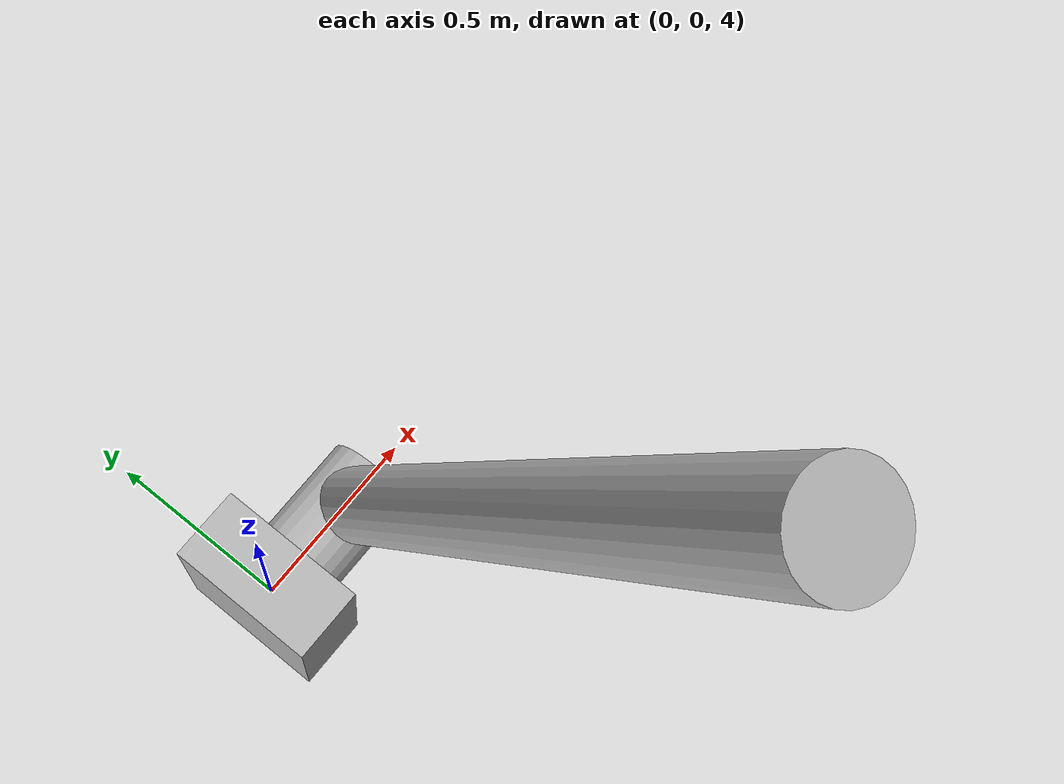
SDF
<sdf version="1.12">
  <world name="double_pendulum_world">

    <!-- Physics settings -->
    <physics name="default_physics" type="ode">
      <max_step_size>0.001</max_step_size>
      <real_time_update_rate>1000</real_time_update_rate>
    </physics>

    <!-- Lighting and Ground -->
    <include>
      <uri>
      https://fuel.gazebosim.org/1.0/OpenRobotics/models/Sun
      </uri>
    </include>
    <include>
      <uri>
        https://fuel.gazebosim.org/1.0/OpenRobotics/models/Ground Plane
      </uri>
    </include>

    <!-- Spawn your pendulum model -->
    <include>
      <uri>model://double_pendulum</uri>
      <pose>0 0 4.0 0 0 0</pose>
    </include>

  </world>
</sdf>

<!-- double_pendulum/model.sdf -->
<sdf version="1.12">
  <model name="double_pendulum">
    <!-- Base -->
    <link name="slider">
      <pose>0.0 0 0 0 0 0</pose>
      <inertial>
        <mass>1.0</mass>
        <pose>0 0 0 0 0 0</pose>
      </inertial>
      <visual name="vis_slider">
        <geometry>
          <box>
            <size>0.2 0.4 0.4</size>
          </box>
        </geometry>
      </visual>
    </link>

    <!-- Link 1 -->
    <link name="link1">
      <pose degrees="true">0.3 0 0 25.0 0 0</pose>
      <inertial>
        <mass>1.0</mass>
        <pose>0 0 1.0 0 0 0</pose>
      </inertial>
      <visual name="vis_link">
        <pose>0 0 1.0 0 0 0</pose>
        <geometry>
          <cylinder>
            <radius>0.1</radius>
            <length>2.0</length>
          </cylinder>
        </geometry>
      </visual>
      <visual name="vis_upper_joint">
        <pose>-0.1 0 0 0 1.5708 0</pose>
        <geometry>
          <cylinder>
            <radius>0.12</radius>
            <length>0.4</length>
          </cylinder>
        </geometry>
      </visual>
      <collision name="col_link">
        <pose>0 0 1.0 0 0 0</pose>
        <geometry>
          <cylinder>
            <radius>0.1</radius>
            <length>2.0</length>
          </cylinder>
        </geometry>
      </collision>
    </link>
    <!-- Link 2 -->

    <!-- Joint 0: world to slider -->
    <joint name="world_to_slider" type="prismatic">
      <parent>world</parent>
      <child>slider</child>
      <pose>0 0 0 0 0 0</pose>
      <axis>
        <!-- Move along the Z-axis -->
        <xyz>0 1 0</xyz>
        <limit>
          <lower>-10.0</lower>
          <upper>10.0</upper>
        </limit>
        <dynamics>
          <damping>0.0</damping>
        </dynamics>
      </axis>
    </joint>
    <!-- Joint 1: slider to link 1 -->
    <joint name="slider_to_l1" type="revolute">
      <pose degrees="true">0 0 0 0 0 0</pose>
      <parent>slider</parent>
      <child>link1</child>
      <axis>
        <xyz>1 0 0</xyz>
        <dynamics>
          <damping>1.0</damping>
        </dynamics>
      </axis>
      <use_parent_model_frame>1</use_parent_model_frame>
    </joint>
    <plugin
          filename="gz-sim-joint-state-publisher-system"
          name="gz::sim::systems::JointStatePublisher">
    </plugin>
    <plugin
      filename="gz-sim-apply-joint-force-system"
      name="gz::sim::systems::ApplyJointForce">
      <joint_name>world_to_slider</joint_name>
    </plugin>
  </model>
</sdf>
